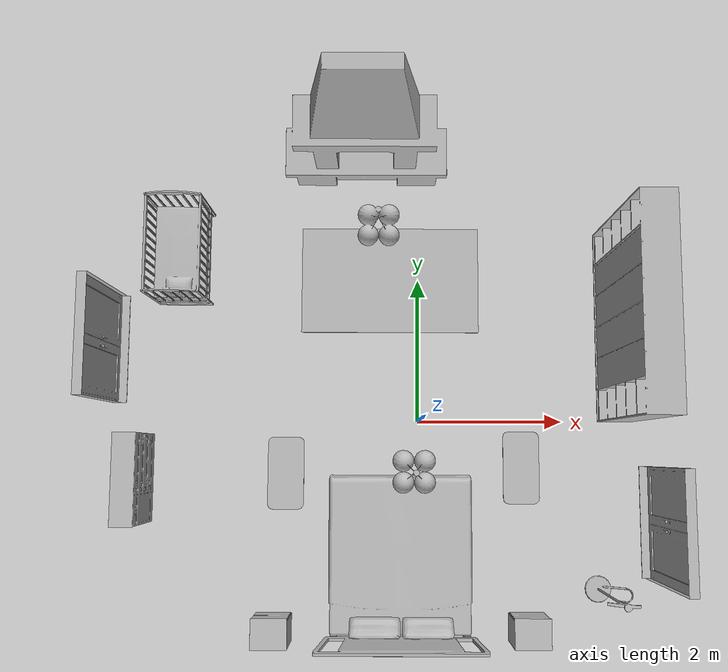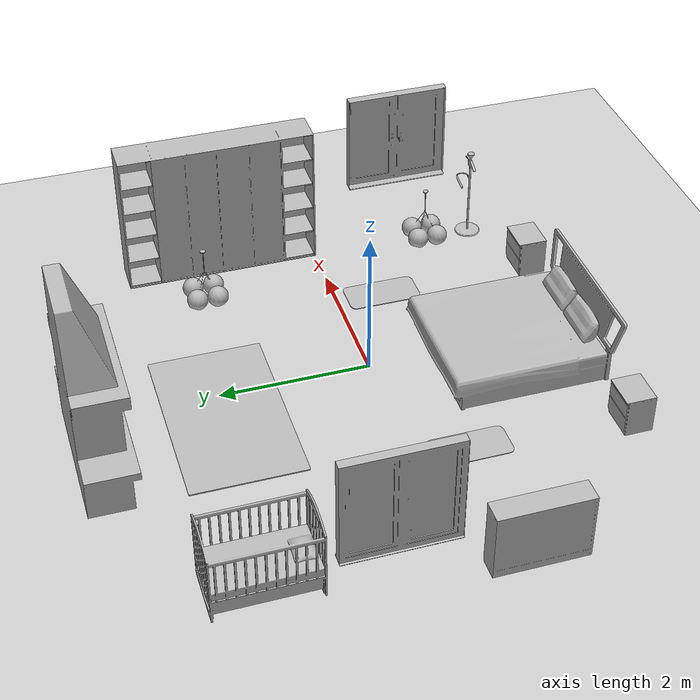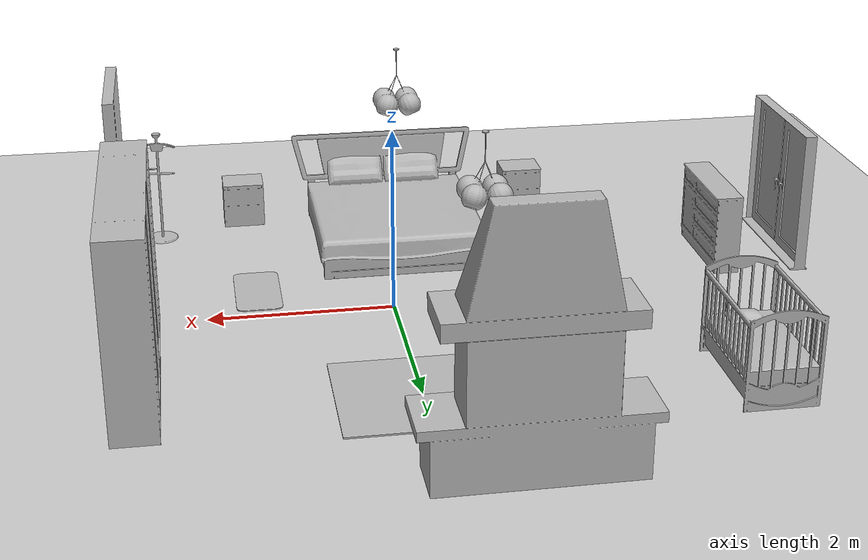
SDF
<sdf version="1.4">
 <world name="default">
  <light name="sun" type="directional">
   <pose>0 0 10 0 -0 0</pose>
   <diffuse>0.8 0.8 0.8 1</diffuse>
   <specular>0.2 0.2 0.2 1</specular>
   <attenuation>
    <range>1000</range>
    <constant>0.9</constant>
    <linear>0.01</linear>
    <quadratic>0.001</quadratic>
   </attenuation>
   <direction>-0.5 0.1 -0.9</direction>
  </light>
  <model name="ground_plane">
   <static>1</static>
   <link name="link">
    <collision name="collision">
     <geometry><plane><normal>0 0 1</normal><size>100 100</size></plane></geometry>
     <surface><friction><ode><mu>100</mu><mu2>50</mu2></ode></friction></surface>
    </collision>
    <visual name="visual">
     <cast_shadows>0</cast_shadows>
     <geometry><plane><normal>0 0 1</normal><size>100 100</size></plane></geometry>
     <material>
      <script><uri>file://media/materials/scripts/gazebo.material</uri><name>Gazebo/Grey</name></script>
     </material>
    </visual>
    <velocity_decay><linear>0</linear><angular>0</angular></velocity_decay>
   </link>
  </model>
  <physics type="ode">
   <max_step_size>0.001</max_step_size>
   <real_time_factor>1</real_time_factor>
   <real_time_update_rate>1000</real_time_update_rate>
   <gravity>0 0 -9.8</gravity>
  </physics>
  <scene><ambient>0.4 0.4 0.4 1</ambient><background>0.7 0.7 0.7 1</background><shadows>1</shadows></scene>
  <spherical_coordinates>
   <surface_model>EARTH_WGS84</surface_model>
   <latitude_deg>0</latitude_deg>
   <longitude_deg>0</longitude_deg>
   <elevation>0</elevation>
   <heading_deg>0</heading_deg>
  </spherical_coordinates>
  <model name="212_0">
   <pose>2.883 -1.29675 0.85 0 -0 3.14159</pose>
   <static>1</static>
   <link name="link">
    <collision name="collision"><geometry><box><size>0.175 1.4 2</size></box></geometry></collision>
    <visual name="visual"><geometry><mesh><uri>model://212/212.dae</uri></mesh></geometry></visual>
    <velocity_decay><linear>0</linear><angular>0</angular></velocity_decay>
   </link>
  </model>
  <model name="212_1">
   <pose>-3.89554 0.893251 0.85 0 -0 0</pose>
   <static>1</static>
   <link name="link">
    <collision name="collision"><geometry><box><size>0.175 1.4 2</size></box></geometry></collision>
    <visual name="visual"><geometry><mesh><uri>model://212/212.dae</uri></mesh></geometry></visual>
    <velocity_decay><linear>0</linear><angular>0</angular></velocity_decay>
   </link>
  </model>
  <model name="204_0">
   <pose>-0.252233 -1.79544 0.004266 0 -0 1.5708</pose>
   <static>1</static>
   <link name="link">
    <collision name="collision"><geometry><box><size>2.19636 2.19 2</size></box></geometry></collision>
    <visual name="visual"><geometry><mesh><uri>model://204/204.dae</uri></mesh></geometry></visual>
    <velocity_decay><linear>0</linear><angular>0</angular></velocity_decay>
   </link>
  </model>
  <model name="190_0">
   <pose>-3.26289 2.29164 0.05 0 0 -4e-06</pose>
   <static>1</static>
   <link name="link">
    <collision name="collision"><geometry><box><size>0.750013 1.30982 2</size></box></geometry></collision>
    <visual name="visual"><geometry><mesh><uri>model://190/190.dae</uri></mesh></geometry></visual>
    <velocity_decay><linear>0</linear><angular>0</angular></velocity_decay>
   </link>
  </model>
  <model name="100_0">
   <pose>2.44943 -2.2698 0.05 0 -0 1.48506</pose>
   <static>1</static>
   <link name="link">
    <collision name="collision"><geometry><box><size>0.359516 0.414814 2</size></box></geometry></collision>
    <visual name="visual"><geometry><mesh><uri>model://100/100.dae</uri></mesh></geometry></visual>
    <velocity_decay><linear>0</linear><angular>0</angular></velocity_decay>
   </link>
  </model>
  <model name="129_0">
   <pose>-3.78584 -0.783085 0.05 0 -0 0</pose>
   <static>1</static>
   <link name="link">
    <collision name="collision"><geometry><box><size>0.304375 1.2 2</size></box></geometry></collision>
    <visual name="visual"><geometry><mesh><uri>model://129/129.dae</uri></mesh></geometry></visual>
    <velocity_decay><linear>0</linear><angular>0</angular></velocity_decay>
   </link>
  </model>
  <model name="146_0">
   <pose>-1.965 -2.77973 0.001407 0 -0 0</pose>
   <static>1</static>
   <link name="link">
    <collision name="collision"><geometry><box><size>0.48 0.4 2</size></box></geometry></collision>
    <visual name="visual"><geometry><mesh><uri>model://146/146.dae</uri></mesh></geometry></visual>
    <velocity_decay><linear>0</linear><angular>0</angular></velocity_decay>
   </link>
  </model>
  <model name="146_1">
   <pose>1.467 -2.76654 0.009626 0 -0 0</pose>
   <static>1</static>
   <link name="link">
    <collision name="collision"><geometry><box><size>0.48 0.4 2</size></box></geometry></collision>
    <visual name="visual"><geometry><mesh><uri>model://146/146.dae</uri></mesh></geometry></visual>
    <velocity_decay><linear>0</linear><angular>0</angular></velocity_decay>
   </link>
  </model>
  <model name="416_0">
   <pose>2.72077 1.33425 0.05 0 0 -3.14159</pose>
   <static>1</static>
   <link name="link">
    <collision name="collision"><geometry><box><size>0.46 2.66 2</size></box></geometry></collision>
    <visual name="visual"><geometry><mesh><uri>model://416/416.dae</uri></mesh></geometry></visual>
    <velocity_decay><linear>0</linear><angular>0</angular></velocity_decay>
   </link>
  </model>
  <model name="632_0">
   <pose>-0.141002 -0.64575 1.99 0 -0 0</pose>
   <static>1</static>
   <link name="link">
    <collision name="collision"><geometry><box><size>0.48 0.48 0</size></box></geometry></collision>
    <visual name="visual"><geometry><mesh><uri>model://632/632.dae</uri></mesh></geometry></visual>
    <velocity_decay><linear>0</linear><angular>0</angular></velocity_decay>
   </link>
  </model>
  <model name="632_1">
   <pose>-0.549003 2.17425 1.99 0 -0 0</pose>
   <static>1</static>
   <link name="link">
    <collision name="collision"><geometry><box><size>0.48 0.48 0</size></box></geometry></collision>
    <visual name="visual"><geometry><mesh><uri>model://632/632.dae</uri></mesh></geometry></visual>
    <velocity_decay><linear>0</linear><angular>0</angular></velocity_decay>
   </link>
  </model>
  <model name="238_0">
   <pose>-0.39494 2.00874 0.003316 0 0 -1.5708</pose>
   <static>1</static>
   <link name="link">
    <collision name="collision"><geometry><box><size>1.5 2.5 0</size></box></geometry></collision>
    <visual name="visual"><geometry><mesh><uri>model://238/238.dae</uri></mesh></geometry></visual>
    <velocity_decay><linear>0</linear><angular>0</angular></velocity_decay>
   </link>
  </model>
  <model name="235_0">
   <pose>1.431 -0.633752 0.003597 0 -0 0</pose>
   <static>1</static>
   <link name="link">
    <collision name="collision"><geometry><box><size>0.5 1 0</size></box></geometry></collision>
    <visual name="visual"><geometry><mesh><uri>model://235/235.dae</uri></mesh></geometry></visual>
    <velocity_decay><linear>0</linear><angular>0</angular></velocity_decay>
   </link>
  </model>
  <model name="235_1">
   <pose>-1.833 -0.717752 0.004753 0 -0 0</pose>
   <static>1</static>
   <link name="link">
    <collision name="collision"><geometry><box><size>0.5 1 0</size></box></geometry></collision>
    <visual name="visual"><geometry><mesh><uri>model://235/235.dae</uri></mesh></geometry></visual>
    <velocity_decay><linear>0</linear><angular>0</angular></velocity_decay>
   </link>
  </model>
  <model name="242_0">
   <pose>-0.727884 3.62904 0.05 0 0 -1.5708</pose>
   <static>1</static>
   <link name="link">
    <collision name="collision"><geometry><box><size>0.66 2.18 2</size></box></geometry></collision>
    <visual name="visual"><geometry><mesh><uri>model://242/242.dae</uri></mesh></geometry></visual>
    <velocity_decay><linear>0</linear><angular>0</angular></velocity_decay>
   </link>
  </model>
 </world>
</sdf>
